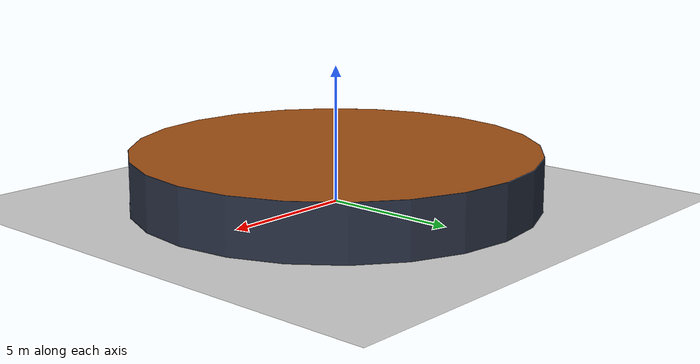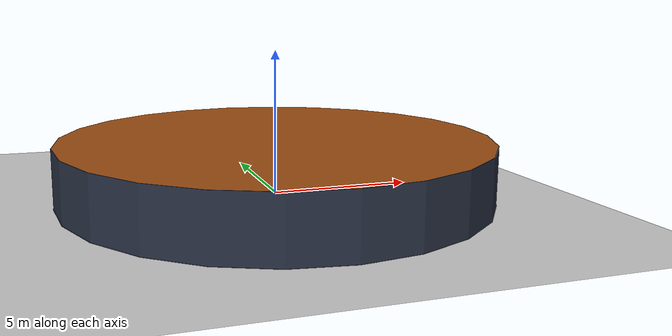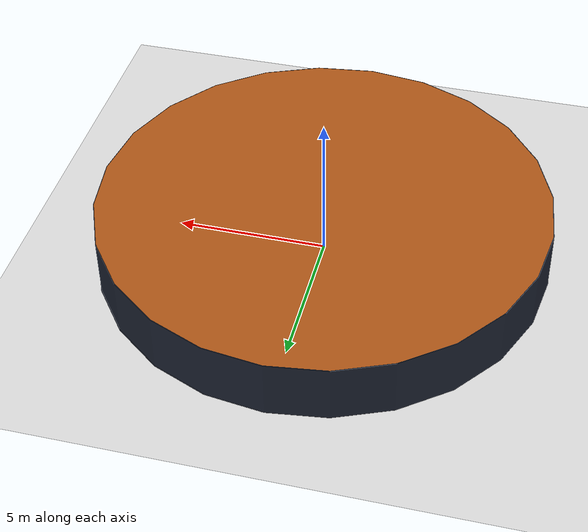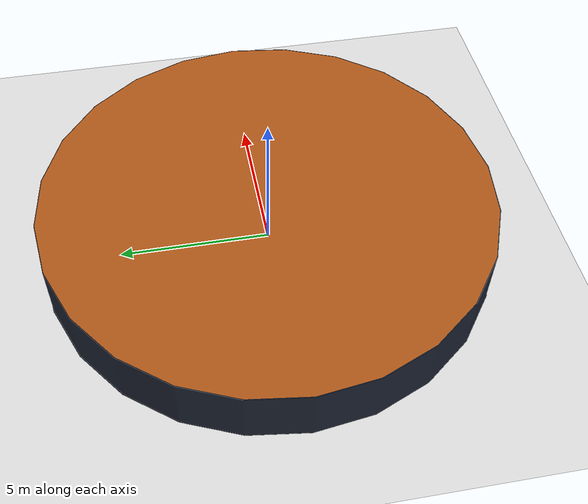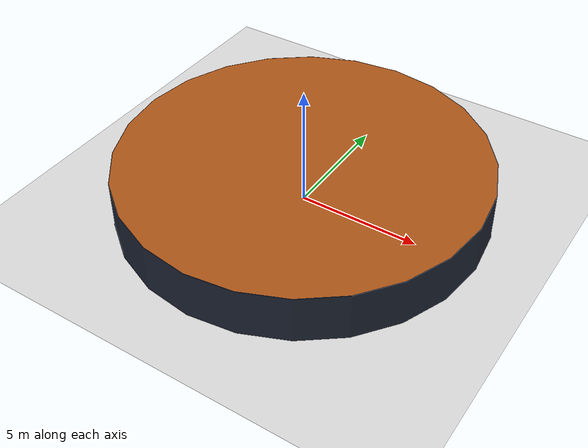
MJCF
<?xml version="1.0" encoding="UTF-8"?>
<mujoco model="sumo_3d_studio">
  <compiler angle="radian"/>
  <option gravity="0 0 -9.81"/>

  <!-- =============== ASSETS =============== -->
  <asset>
    <!-- Studio cyclorama: white to light gray gradient -->
    <texture name="studio_sky" type="skybox"
             builtin="gradient" width="2048"
             rgb1="1.0 1.0 1.0"
             rgb2="0.95 0.95 0.96"
             mark="none"/>

    <!-- Luxury white/grey checker floor -->
    <texture name="studio_floor_tex" type="2d" builtin="checker"
             rgb1="0.95 0.95 0.95"
             rgb2="0.70 0.70 0.70"
             width="512" height="512"
             mark="edge"
             markrgb="0.60 0.60 0.60"/>
    <material name="studio_floor_mat"
              texture="studio_floor_tex"
              texrepeat="2 2"
              texuniform="true"
              specular="0.0"
              shininess="0.0"
              reflectance="0.00"
              emission="0"/>

    <!-- Dohyo ring: dark metallic surface -->
    <material name="dohyo_surface"
              rgba="0.15 0.18 0.25 1.0"
              specular="0.3"
              shininess="0.4"
              reflectance="0.05"
              emission="0"/>

    <!-- Dohyo boundary marking: muted burnt orange ring -->
    <material name="dohyo_boundary"
              rgba="0.65 0.32 0.08 1.0"
              specular="0.1"
              shininess="0.1"
              reflectance="0"/>

    <!-- Dohyo side bevel: dark steel -->
    <material name="dohyo_bevel"
              rgba="0.20 0.22 0.28 1.0"
              specular="0.2"
              shininess="0.3"
              reflectance="0.02"/>

    <!-- Start position markers -->
    <material name="red_marker"
              rgba="0.85 0.20 0.20 0.8"
              emission="0"/>
    <material name="blue_marker"
              rgba="0.20 0.35 0.85 0.8"
              emission="0"/>
  </asset>

  <!-- =============== VISUALS =============== -->
  <visual>
    <!-- Perspective camera with moderate FOV -->
    <global fovy="45" offwidth="1920" offheight="1080"/>
    <!-- Soft ambient + controlled headlight -->
    <headlight ambient="0.35 0.35 0.35" diffuse="0.15 0.15 0.15" specular="0.05 0.05 0.05"/>
    <!-- Clean depth range -->
    <map fogstart="100" fogend="101" znear="0.01" zfar="100" haze="0"/>
    <!-- Enable shadows for grounding -->
    <quality shadowsize="4096" offsamples="4"/>
  </visual>

  <!-- =============== WORLD =============== -->
  <worldbody>

    <!-- KEY LIGHT: Main directional from above-front -->
    <light name="key_light"
           pos="4 -6 8"
           dir="-0.3 0.5 -1"
           diffuse="0.35 0.35 0.35"
           specular="0.2 0.2 0.2"
           directional="true"
           castshadow="true"/>

    <!-- FILL LIGHTS: Softer ambient fill from sides -->
    <light name="fill_left"
           pos="-8 -4 6"
           dir="0.6 0.3 -0.8"
           diffuse="0.35 0.35 0.35"
           specular="0 0 0"
           directional="true"
           castshadow="false"/>

    <light name="fill_right"
           pos="8 -4 6"
           dir="-0.6 0.3 -0.8"
           diffuse="0.35 0.35 0.35"
           specular="0 0 0"
           directional="true"
           castshadow="false"/>

    <!-- RIM LIGHT: Subtle back separation -->
    <light name="rim_light"
           pos="0 8 5"
           dir="0 -1 -0.5"
           diffuse="0.25 0.25 0.25"
           specular="0.1 0.1 0.1"
           directional="true"
           castshadow="false"/>

    <body name="arena" pos="0 0 0">

      <!-- STUDIO FLOOR: Infinite white epoxy plane with grid -->
      <geom name="outside_floor"
            type="plane"
            pos="0 0 0"
            size="500 500 1"
            material="studio_floor_mat"
            friction="0.005 0.0001 0.0001"
            solref="0.01 1.5"
            solimp="0.9 0.95 0.01"
            contype="1"
            conaffinity="1"/>

      <!-- DOHYO PLATFORM: Raised circular ring (radius=7.5) -->
      <geom name="sumo_ring"
            type="cylinder"
            size="7.5 1.0"
            pos="0 0 1.0"
            material="dohyo_surface"
            friction="2.00 0.005 0.0001"
            condim="3"
            priority="1"
            solref="0.005 1"
            solimp="0.95 0.99 0.005"
            margin="0.002"
            contype="1"
            conaffinity="1"/>

      <!-- Dohyo bevel edge -->
      <geom name="dohyo_bevel_edge"
            type="cylinder"
            size="7.52 0.005"
            pos="0 0 0.005"
            material="dohyo_bevel"
            contype="0"
            conaffinity="0"
            group="1"/>

      <!-- Boundary marking ring at edge -->
      <geom name="dohyo_boundary_ring"
            type="cylinder"
            size="7.48 0.001"
            pos="0 0 2.001"
            material="dohyo_boundary"
            contype="0"
            conaffinity="0"
            group="1"/>

      <!-- Center mark -->
      <site name="center_mark"
            type="cylinder"
            pos="0 0 2.001"
            size="0.05 0.001"
            rgba="0.35 0.32 0.30 0.3"/>

      <!-- Camera target body (for 3D, target center of ring) -->
      <body name="ring_center" pos="0 0 2.5">
        <geom name="ring_center_marker" type="sphere" size="0.001"
              rgba="0 0 0 0" group="3" contype="0" conaffinity="0"/>
      </body>

      <!-- RED spawn (invisible site for position detection) -->
      <!-- 3D: spawn at opposite edges of ring for fair start -->
      <site name="spawn/left"
            pos="-3.75 0 2.3"
            size="0.001"
            rgba="0 0 0 0"
            type="sphere"/>

      <geom name="red_start_line"
            type="box"
            pos="-3.75 0 2.001"
            size="0.25 0.01 0.0005"
            material="red_marker"
            contype="0"
            conaffinity="0"
            group="1"/>

      <!-- BLUE spawn (invisible site for position detection) -->
      <site name="spawn/right"
            pos="3.75 0 2.3"
            size="0.001"
            rgba="0 0 0 0"
            type="sphere"/>

      <geom name="blue_start_line"
            type="box"
            pos="3.75 0 2.001"
            size="0.25 0.01 0.0005"
            material="blue_marker"
            contype="0"
            conaffinity="0"
            group="1"/>

      <!-- Y-axis spawns (perpendicular to X-axis spawns) -->
      <site name="spawn/front"
            pos="0 -3.75 2.3"
            size="0.001"
            rgba="0 0 0 0"
            type="sphere"/>

      <site name="spawn/back"
            pos="0 3.75 2.3"
            size="0.001"
            rgba="0 0 0 0"
            type="sphere"/>

      <!-- CAMERAS optimized for 3D viewing (7.5m radius ring) -->

      <!-- 3/4 perspective -->
      <camera name="side"
              pos="9.0 -13.5 10.5"
              mode="targetbody"
              target="ring_center"
              fovy="50"/>

      <!-- Alternate angle - front quarter view -->
      <camera name="front_quarter"
              pos="12.0 7.5 9.0"
              mode="targetbody"
              target="ring_center"
              fovy="48"/>

      <!-- Dynamic tracking camera -->
      <camera name="tracking"
              pos="0 -12 10.5"
              mode="trackcom"
              fovy="55"/>

      <!-- Top-down for reference -->
      <camera name="topdown"
              pos="0 0 25"
              quat="1 0 0 0"
              mode="trackcom"
              fovy="55"/>

    </body>
  </worldbody>
</mujoco>
